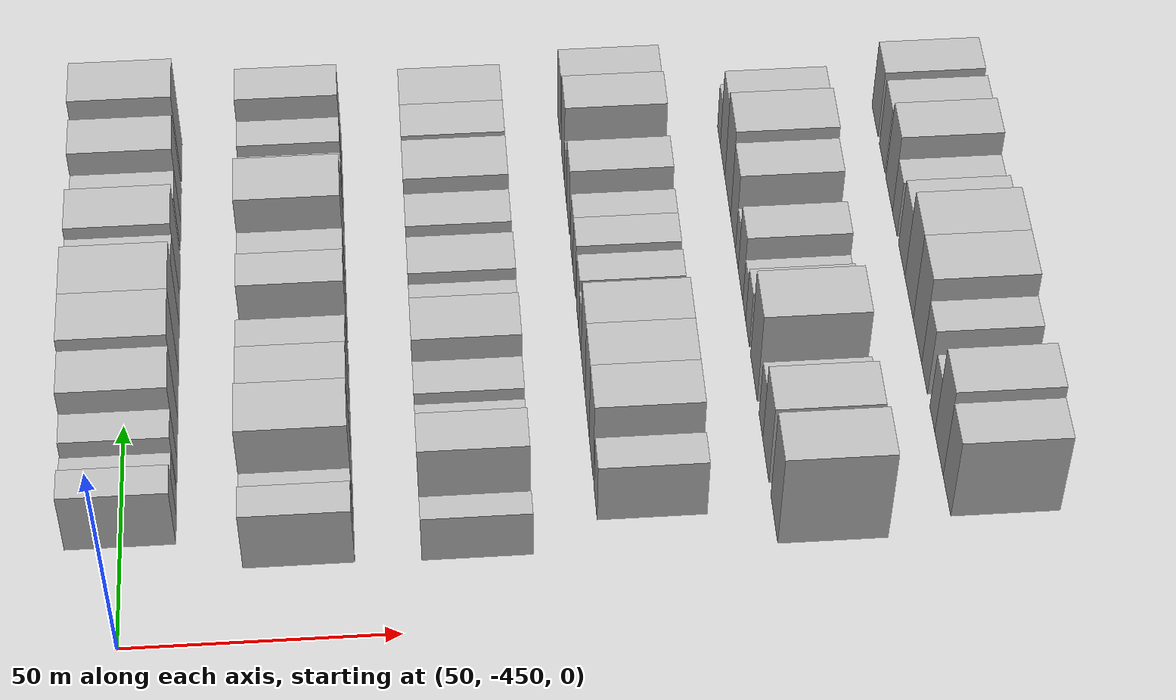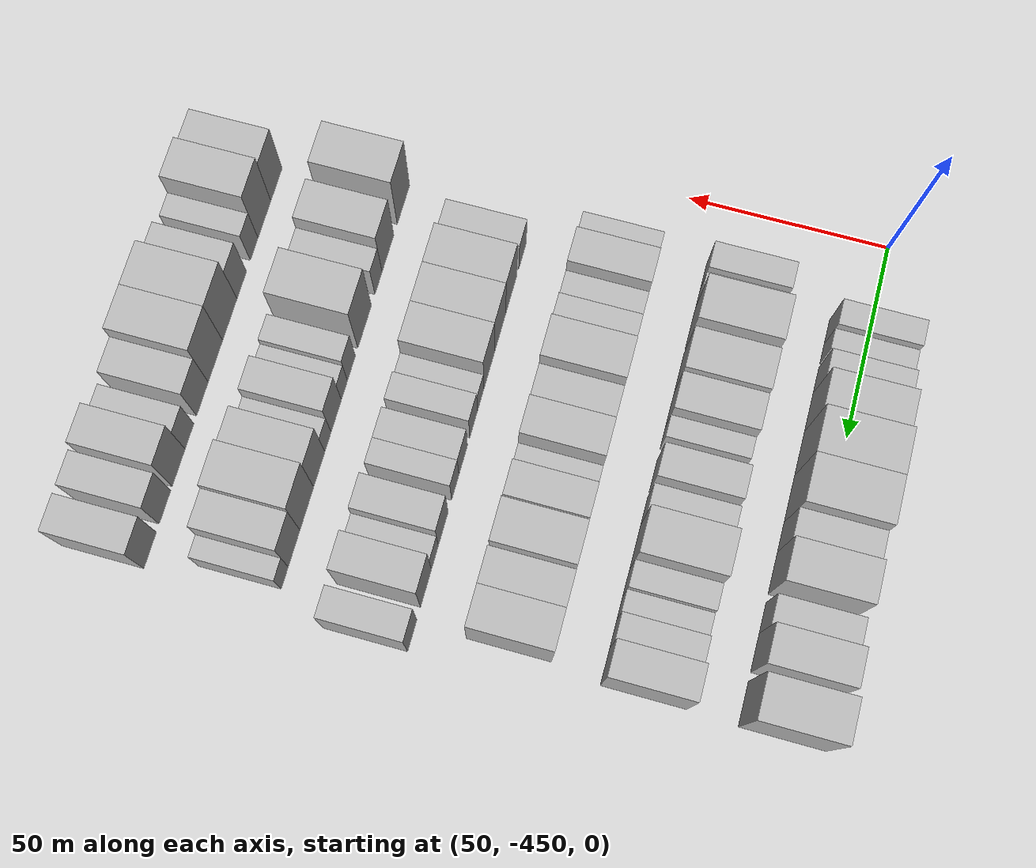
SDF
<sdf version="1.6">
 <world name="default">
  <model name="building_12">
   <static>1</static>
   <pose>50.0000 -424.5682 0 0.000000 0.000000 0.000000</pose>
   <link name="link">
    <pose>0 0 7.50 0 0 0</pose>
    <collision name="collision"><geometry><box><size>20.0000 6.4340 15.0000</size></box></geometry></collision>
    <visual name="visual">
     <cast_shadows>0</cast_shadows>
     <geometry><box><size>20.0000 6.4340 15.0000</size></box></geometry>
     <material>
      <script>
       <uri>model://HANNAS_wall/materials/scripts</uri>
       <uri>model://HANNAS_wall/materials/textures</uri>
       <name>vrc/HANNAS_wall</name>
      </script>
     </material>
    </visual>
   </link>
  </model>
  <model name="building_13">
   <static>1</static>
   <pose>50.0000 -418.7945 0 0.000000 0.000000 0.000000</pose>
   <link name="link">
    <pose>0 0 6.00 0 0 0</pose>
    <collision name="collision"><geometry><box><size>20.0000 5.1134 12.0000</size></box></geometry></collision>
    <visual name="visual">
     <cast_shadows>0</cast_shadows>
     <geometry><box><size>20.0000 5.1134 12.0000</size></box></geometry>
     <material>
      <script>
       <uri>model://HANNAS_wall/materials/scripts</uri>
       <uri>model://HANNAS_wall/materials/textures</uri>
       <name>vrc/HANNAS_wall</name>
      </script>
     </material>
    </visual>
   </link>
  </model>
  <model name="building_14">
   <static>1</static>
   <pose>50.0000 -411.9129 0 0.000000 0.000000 0.000000</pose>
   <link name="link">
    <pose>0 0 7.50 0 0 0</pose>
    <collision name="collision"><geometry><box><size>20.0000 6.6497 15.0000</size></box></geometry></collision>
    <visual name="visual">
     <cast_shadows>0</cast_shadows>
     <geometry><box><size>20.0000 6.6497 15.0000</size></box></geometry>
     <material>
      <script>
       <uri>model://HANNAS_wall/materials/scripts</uri>
       <uri>model://HANNAS_wall/materials/textures</uri>
       <name>vrc/HANNAS_wall</name>
      </script>
     </material>
    </visual>
   </link>
  </model>
  <model name="building_15">
   <static>1</static>
   <pose>50.0000 -403.6830 0 0.000000 0.000000 0.000000</pose>
   <link name="link">
    <pose>0 0 10.50 0 0 0</pose>
    <collision name="collision"><geometry><box><size>20.0000 9.8102 21.0000</size></box></geometry></collision>
    <visual name="visual">
     <cast_shadows>0</cast_shadows>
     <geometry><box><size>20.0000 9.8102 21.0000</size></box></geometry>
     <material>
      <script>
       <uri>model://HANNAS_wall/materials/scripts</uri>
       <uri>model://HANNAS_wall/materials/textures</uri>
       <name>vrc/HANNAS_wall</name>
      </script>
     </material>
    </visual>
   </link>
  </model>
  <model name="building_16">
   <static>1</static>
   <pose>50.0000 -393.2084 0 0.000000 0.000000 0.000000</pose>
   <link name="link">
    <pose>0 0 12.00 0 0 0</pose>
    <collision name="collision"><geometry><box><size>20.0000 11.1389 24.0000</size></box></geometry></collision>
    <visual name="visual">
     <cast_shadows>0</cast_shadows>
     <geometry><box><size>20.0000 11.1389 24.0000</size></box></geometry>
     <material>
      <script>
       <uri>model://HANNAS_wall/materials/scripts</uri>
       <uri>model://HANNAS_wall/materials/textures</uri>
       <name>vrc/HANNAS_wall</name>
      </script>
     </material>
    </visual>
   </link>
  </model>
  <model name="building_17">
   <static>1</static>
   <pose>50.0000 -381.8397 0 0.000000 0.000000 0.000000</pose>
   <link name="link">
    <pose>0 0 12.00 0 0 0</pose>
    <collision name="collision"><geometry><box><size>20.0000 11.5986 24.0000</size></box></geometry></collision>
    <visual name="visual">
     <cast_shadows>0</cast_shadows>
     <geometry><box><size>20.0000 11.5986 24.0000</size></box></geometry>
     <material>
      <script>
       <uri>model://HANNAS_wall/materials/scripts</uri>
       <uri>model://HANNAS_wall/materials/textures</uri>
       <name>vrc/HANNAS_wall</name>
      </script>
     </material>
    </visual>
   </link>
  </model>
  <model name="building_18">
   <static>1</static>
   <pose>50.0000 -372.4252 0 0.000000 0.000000 0.000000</pose>
   <link name="link">
    <pose>0 0 9.00 0 0 0</pose>
    <collision name="collision"><geometry><box><size>20.0000 7.2304 18.0000</size></box></geometry></collision>
    <visual name="visual">
     <cast_shadows>0</cast_shadows>
     <geometry><box><size>20.0000 7.2304 18.0000</size></box></geometry>
     <material>
      <script>
       <uri>model://HANNAS_wall/materials/scripts</uri>
       <uri>model://HANNAS_wall/materials/textures</uri>
       <name>vrc/HANNAS_wall</name>
      </script>
     </material>
    </visual>
   </link>
  </model>
  <model name="building_19">
   <static>1</static>
   <pose>50.0000 -363.7485 0 0.000000 0.000000 0.000000</pose>
   <link name="link">
    <pose>0 0 10.50 0 0 0</pose>
    <collision name="collision"><geometry><box><size>20.0000 10.1231 21.0000</size></box></geometry></collision>
    <visual name="visual">
     <cast_shadows>0</cast_shadows>
     <geometry><box><size>20.0000 10.1231 21.0000</size></box></geometry>
     <material>
      <script>
       <uri>model://HANNAS_wall/materials/scripts</uri>
       <uri>model://HANNAS_wall/materials/textures</uri>
       <name>vrc/HANNAS_wall</name>
      </script>
     </material>
    </visual>
   </link>
  </model>
  <model name="building_20">
   <static>1</static>
   <pose>50.0000 -353.0496 0 0.000000 0.000000 0.000000</pose>
   <link name="link">
    <pose>0 0 7.50 0 0 0</pose>
    <collision name="collision"><geometry><box><size>20.0000 7.2747 15.0000</size></box></geometry></collision>
    <visual name="visual">
     <cast_shadows>0</cast_shadows>
     <geometry><box><size>20.0000 7.2747 15.0000</size></box></geometry>
     <material>
      <script>
       <uri>model://HANNAS_wall/materials/scripts</uri>
       <uri>model://HANNAS_wall/materials/textures</uri>
       <name>vrc/HANNAS_wall</name>
      </script>
     </material>
    </visual>
   </link>
  </model>
  <model name="building_21">
   <static>1</static>
   <pose>50.0000 -344.8619 0 0.000000 0.000000 0.000000</pose>
   <link name="link">
    <pose>0 0 10.50 0 0 0</pose>
    <collision name="collision"><geometry><box><size>20.0000 9.1007 21.0000</size></box></geometry></collision>
    <visual name="visual">
     <cast_shadows>0</cast_shadows>
     <geometry><box><size>20.0000 9.1007 21.0000</size></box></geometry>
     <material>
      <script>
       <uri>model://HANNAS_wall/materials/scripts</uri>
       <uri>model://HANNAS_wall/materials/textures</uri>
       <name>vrc/HANNAS_wall</name>
      </script>
     </material>
    </visual>
   </link>
  </model>
  <model name="building_22">
   <static>1</static>
   <pose>50.0000 -333.0687 0 0.000000 0.000000 0.000000</pose>
   <link name="link">
    <pose>0 0 12.00 0 0 0</pose>
    <collision name="collision"><geometry><box><size>20.0000 10.4857 24.0000</size></box></geometry></collision>
    <visual name="visual">
     <cast_shadows>0</cast_shadows>
     <geometry><box><size>20.0000 10.4857 24.0000</size></box></geometry>
     <material>
      <script>
       <uri>model://HANNAS_wall/materials/scripts</uri>
       <uri>model://HANNAS_wall/materials/textures</uri>
       <name>vrc/HANNAS_wall</name>
      </script>
     </material>
    </visual>
   </link>
  </model>
  <model name="building_124">
   <static>1</static>
   <pose>82.0000 -430.5340 0 0.000000 0.000000 0.000000</pose>
   <link name="link">
    <pose>0 0 7.50 0 0 0</pose>
    <collision name="collision"><geometry><box><size>20.0000 6.7741 15.0000</size></box></geometry></collision>
    <visual name="visual">
     <cast_shadows>0</cast_shadows>
     <geometry><box><size>20.0000 6.7741 15.0000</size></box></geometry>
     <material>
      <script>
       <uri>model://HANNAS_wall/materials/scripts</uri>
       <uri>model://HANNAS_wall/materials/textures</uri>
       <name>vrc/HANNAS_wall</name>
      </script>
     </material>
    </visual>
   </link>
  </model>
  <model name="building_125">
   <static>1</static>
   <pose>82.0000 -424.5236 0 0.000000 0.000000 0.000000</pose>
   <link name="link">
    <pose>0 0 6.00 0 0 0</pose>
    <collision name="collision"><geometry><box><size>20.0000 5.2467 12.0000</size></box></geometry></collision>
    <visual name="visual">
     <cast_shadows>0</cast_shadows>
     <geometry><box><size>20.0000 5.2467 12.0000</size></box></geometry>
     <material>
      <script>
       <uri>model://HANNAS_wall/materials/scripts</uri>
       <uri>model://HANNAS_wall/materials/textures</uri>
       <name>vrc/HANNAS_wall</name>
      </script>
     </material>
    </visual>
   </link>
  </model>
  <model name="building_126">
   <static>1</static>
   <pose>82.0000 -416.4180 0 0.000000 0.000000 0.000000</pose>
   <link name="link">
    <pose>0 0 12.00 0 0 0</pose>
    <collision name="collision"><geometry><box><size>20.0000 10.9645 24.0000</size></box></geometry></collision>
    <visual name="visual">
     <cast_shadows>0</cast_shadows>
     <geometry><box><size>20.0000 10.9645 24.0000</size></box></geometry>
     <material>
      <script>
       <uri>model://HANNAS_wall/materials/scripts</uri>
       <uri>model://HANNAS_wall/materials/textures</uri>
       <name>vrc/HANNAS_wall</name>
      </script>
     </material>
    </visual>
   </link>
  </model>
  <model name="building_127">
   <static>1</static>
   <pose>82.0000 -404.8892 0 0.000000 0.000000 0.000000</pose>
   <link name="link">
    <pose>0 0 10.50 0 0 0</pose>
    <collision name="collision"><geometry><box><size>20.0000 10.0932 21.0000</size></box></geometry></collision>
    <visual name="visual">
     <cast_shadows>0</cast_shadows>
     <geometry><box><size>20.0000 10.0932 21.0000</size></box></geometry>
     <material>
      <script>
       <uri>model://HANNAS_wall/materials/scripts</uri>
       <uri>model://HANNAS_wall/materials/textures</uri>
       <name>vrc/HANNAS_wall</name>
      </script>
     </material>
    </visual>
   </link>
  </model>
  <model name="building_128">
   <static>1</static>
   <pose>82.0000 -395.3559 0 0.000000 0.000000 0.000000</pose>
   <link name="link">
    <pose>0 0 9.00 0 0 0</pose>
    <collision name="collision"><geometry><box><size>20.0000 8.9732 18.0000</size></box></geometry></collision>
    <visual name="visual">
     <cast_shadows>0</cast_shadows>
     <geometry><box><size>20.0000 8.9732 18.0000</size></box></geometry>
     <material>
      <script>
       <uri>model://HANNAS_wall/materials/scripts</uri>
       <uri>model://HANNAS_wall/materials/textures</uri>
       <name>vrc/HANNAS_wall</name>
      </script>
     </material>
    </visual>
   </link>
  </model>
  <model name="building_129">
   <static>1</static>
   <pose>82.0000 -388.2121 0 0.000000 0.000000 0.000000</pose>
   <link name="link">
    <pose>0 0 6.00 0 0 0</pose>
    <collision name="collision"><geometry><box><size>20.0000 5.3145 12.0000</size></box></geometry></collision>
    <visual name="visual">
     <cast_shadows>0</cast_shadows>
     <geometry><box><size>20.0000 5.3145 12.0000</size></box></geometry>
     <material>
      <script>
       <uri>model://HANNAS_wall/materials/scripts</uri>
       <uri>model://HANNAS_wall/materials/textures</uri>
       <name>vrc/HANNAS_wall</name>
      </script>
     </material>
    </visual>
   </link>
  </model>
  <model name="building_130">
   <static>1</static>
   <pose>82.0000 -378.5618 0 0.000000 0.000000 0.000000</pose>
   <link name="link">
    <pose>0 0 9.00 0 0 0</pose>
    <collision name="collision"><geometry><box><size>20.0000 7.9861 18.0000</size></box></geometry></collision>
    <visual name="visual">
     <cast_shadows>0</cast_shadows>
     <geometry><box><size>20.0000 7.9861 18.0000</size></box></geometry>
     <material>
      <script>
       <uri>model://HANNAS_wall/materials/scripts</uri>
       <uri>model://HANNAS_wall/materials/textures</uri>
       <name>vrc/HANNAS_wall</name>
      </script>
     </material>
    </visual>
   </link>
  </model>
  <model name="building_131">
   <static>1</static>
   <pose>82.0000 -370.0296 0 0.000000 0.000000 0.000000</pose>
   <link name="link">
    <pose>0 0 7.50 0 0 0</pose>
    <collision name="collision"><geometry><box><size>20.0000 7.0783 15.0000</size></box></geometry></collision>
    <visual name="visual">
     <cast_shadows>0</cast_shadows>
     <geometry><box><size>20.0000 7.0783 15.0000</size></box></geometry>
     <material>
      <script>
       <uri>model://HANNAS_wall/materials/scripts</uri>
       <uri>model://HANNAS_wall/materials/textures</uri>
       <name>vrc/HANNAS_wall</name>
      </script>
     </material>
    </visual>
   </link>
  </model>
  <model name="building_132">
   <static>1</static>
   <pose>82.0000 -361.0724 0 0.000000 0.000000 0.000000</pose>
   <link name="link">
    <pose>0 0 12.00 0 0 0</pose>
    <collision name="collision"><geometry><box><size>20.0000 10.8361 24.0000</size></box></geometry></collision>
    <visual name="visual">
     <cast_shadows>0</cast_shadows>
     <geometry><box><size>20.0000 10.8361 24.0000</size></box></geometry>
     <material>
      <script>
       <uri>model://HANNAS_wall/materials/scripts</uri>
       <uri>model://HANNAS_wall/materials/textures</uri>
       <name>vrc/HANNAS_wall</name>
      </script>
     </material>
    </visual>
   </link>
  </model>
  <model name="building_133">
   <static>1</static>
   <pose>82.0000 -352.4834 0 0.000000 0.000000 0.000000</pose>
   <link name="link">
    <pose>0 0 7.50 0 0 0</pose>
    <collision name="collision"><geometry><box><size>20.0000 6.3420 15.0000</size></box></geometry></collision>
    <visual name="visual">
     <cast_shadows>0</cast_shadows>
     <geometry><box><size>20.0000 6.3420 15.0000</size></box></geometry>
     <material>
      <script>
       <uri>model://HANNAS_wall/materials/scripts</uri>
       <uri>model://HANNAS_wall/materials/textures</uri>
       <name>vrc/HANNAS_wall</name>
      </script>
     </material>
    </visual>
   </link>
  </model>
  <model name="building_134">
   <static>1</static>
   <pose>82.0000 -346.5260 0 0.000000 0.000000 0.000000</pose>
   <link name="link">
    <pose>0 0 6.00 0 0 0</pose>
    <collision name="collision"><geometry><box><size>20.0000 5.5727 12.0000</size></box></geometry></collision>
    <visual name="visual">
     <cast_shadows>0</cast_shadows>
     <geometry><box><size>20.0000 5.5727 12.0000</size></box></geometry>
     <material>
      <script>
       <uri>model://HANNAS_wall/materials/scripts</uri>
       <uri>model://HANNAS_wall/materials/textures</uri>
       <name>vrc/HANNAS_wall</name>
      </script>
     </material>
    </visual>
   </link>
  </model>
  <model name="building_135">
   <static>1</static>
   <pose>82.0000 -340.3634 0 0.000000 0.000000 0.000000</pose>
   <link name="link">
    <pose>0 0 7.50 0 0 0</pose>
    <collision name="collision"><geometry><box><size>20.0000 6.7524 15.0000</size></box></geometry></collision>
    <visual name="visual">
     <cast_shadows>0</cast_shadows>
     <geometry><box><size>20.0000 6.7524 15.0000</size></box></geometry>
     <material>
      <script>
       <uri>model://HANNAS_wall/materials/scripts</uri>
       <uri>model://HANNAS_wall/materials/textures</uri>
       <name>vrc/HANNAS_wall</name>
      </script>
     </material>
    </visual>
   </link>
  </model>
  <model name="building_136">
   <static>1</static>
   <pose>82.0000 -332.7306 0 0.000000 0.000000 0.000000</pose>
   <link name="link">
    <pose>0 0 10.50 0 0 0</pose>
    <collision name="collision"><geometry><box><size>20.0000 8.5133 21.0000</size></box></geometry></collision>
    <visual name="visual">
     <cast_shadows>0</cast_shadows>
     <geometry><box><size>20.0000 8.5133 21.0000</size></box></geometry>
     <material>
      <script>
       <uri>model://HANNAS_wall/materials/scripts</uri>
       <uri>model://HANNAS_wall/materials/textures</uri>
       <name>vrc/HANNAS_wall</name>
      </script>
     </material>
    </visual>
   </link>
  </model>
  <model name="building_250">
   <static>1</static>
   <pose>114.0000 -431.7602 0 0.000000 0.000000 0.000000</pose>
   <link name="link">
    <pose>0 0 6.00 0 0 0</pose>
    <collision name="collision"><geometry><box><size>20.0000 5.1000 12.0000</size></box></geometry></collision>
    <visual name="visual">
     <cast_shadows>0</cast_shadows>
     <geometry><box><size>20.0000 5.1000 12.0000</size></box></geometry>
     <material>
      <script>
       <uri>model://HANNAS_wall/materials/scripts</uri>
       <uri>model://HANNAS_wall/materials/textures</uri>
       <name>vrc/HANNAS_wall</name>
      </script>
     </material>
    </visual>
   </link>
  </model>
  <model name="building_251">
   <static>1</static>
   <pose>114.0000 -421.8343 0 0.000000 0.000000 0.000000</pose>
   <link name="link">
    <pose>0 0 10.50 0 0 0</pose>
    <collision name="collision"><geometry><box><size>20.0000 8.7518 21.0000</size></box></geometry></collision>
    <visual name="visual">
     <cast_shadows>0</cast_shadows>
     <geometry><box><size>20.0000 8.7518 21.0000</size></box></geometry>
     <material>
      <script>
       <uri>model://HANNAS_wall/materials/scripts</uri>
       <uri>model://HANNAS_wall/materials/textures</uri>
       <name>vrc/HANNAS_wall</name>
      </script>
     </material>
    </visual>
   </link>
  </model>
  <model name="building_252">
   <static>1</static>
   <pose>114.0000 -414.0131 0 0.000000 0.000000 0.000000</pose>
   <link name="link">
    <pose>0 0 7.50 0 0 0</pose>
    <collision name="collision"><geometry><box><size>20.0000 6.8906 15.0000</size></box></geometry></collision>
    <visual name="visual">
     <cast_shadows>0</cast_shadows>
     <geometry><box><size>20.0000 6.8906 15.0000</size></box></geometry>
     <material>
      <script>
       <uri>model://HANNAS_wall/materials/scripts</uri>
       <uri>model://HANNAS_wall/materials/textures</uri>
       <name>vrc/HANNAS_wall</name>
      </script>
     </material>
    </visual>
   </link>
  </model>
  <model name="building_253">
   <static>1</static>
   <pose>114.0000 -406.7604 0 0.000000 0.000000 0.000000</pose>
   <link name="link">
    <pose>0 0 9.00 0 0 0</pose>
    <collision name="collision"><geometry><box><size>20.0000 7.6148 18.0000</size></box></geometry></collision>
    <visual name="visual">
     <cast_shadows>0</cast_shadows>
     <geometry><box><size>20.0000 7.6148 18.0000</size></box></geometry>
     <material>
      <script>
       <uri>model://HANNAS_wall/materials/scripts</uri>
       <uri>model://HANNAS_wall/materials/textures</uri>
       <name>vrc/HANNAS_wall</name>
      </script>
     </material>
    </visual>
   </link>
  </model>
  <model name="building_254">
   <static>1</static>
   <pose>114.0000 -397.9129 0 0.000000 0.000000 0.000000</pose>
   <link name="link">
    <pose>0 0 12.00 0 0 0</pose>
    <collision name="collision"><geometry><box><size>20.0000 10.0802 24.0000</size></box></geometry></collision>
    <visual name="visual">
     <cast_shadows>0</cast_shadows>
     <geometry><box><size>20.0000 10.0802 24.0000</size></box></geometry>
     <material>
      <script>
       <uri>model://HANNAS_wall/materials/scripts</uri>
       <uri>model://HANNAS_wall/materials/textures</uri>
       <name>vrc/HANNAS_wall</name>
      </script>
     </material>
    </visual>
   </link>
  </model>
  <model name="building_255">
   <static>1</static>
   <pose>114.0000 -388.5954 0 0.000000 0.000000 0.000000</pose>
   <link name="link">
    <pose>0 0 9.00 0 0 0</pose>
    <collision name="collision"><geometry><box><size>20.0000 8.5548 18.0000</size></box></geometry></collision>
    <visual name="visual">
     <cast_shadows>0</cast_shadows>
     <geometry><box><size>20.0000 8.5548 18.0000</size></box></geometry>
     <material>
      <script>
       <uri>model://HANNAS_wall/materials/scripts</uri>
       <uri>model://HANNAS_wall/materials/textures</uri>
       <name>vrc/HANNAS_wall</name>
      </script>
     </material>
    </visual>
   </link>
  </model>
  <model name="building_256">
   <static>1</static>
   <pose>114.0000 -379.7236 0 0.000000 0.000000 0.000000</pose>
   <link name="link">
    <pose>0 0 10.50 0 0 0</pose>
    <collision name="collision"><geometry><box><size>20.0000 9.1888 21.0000</size></box></geometry></collision>
    <visual name="visual">
     <cast_shadows>0</cast_shadows>
     <geometry><box><size>20.0000 9.1888 21.0000</size></box></geometry>
     <material>
      <script>
       <uri>model://HANNAS_wall/materials/scripts</uri>
       <uri>model://HANNAS_wall/materials/textures</uri>
       <name>vrc/HANNAS_wall</name>
      </script>
     </material>
    </visual>
   </link>
  </model>
  <model name="building_257">
   <static>1</static>
   <pose>114.0000 -372.4502 0 0.000000 0.000000 0.000000</pose>
   <link name="link">
    <pose>0 0 6.00 0 0 0</pose>
    <collision name="collision"><geometry><box><size>20.0000 5.3579 12.0000</size></box></geometry></collision>
    <visual name="visual">
     <cast_shadows>0</cast_shadows>
     <geometry><box><size>20.0000 5.3579 12.0000</size></box></geometry>
     <material>
      <script>
       <uri>model://HANNAS_wall/materials/scripts</uri>
       <uri>model://HANNAS_wall/materials/textures</uri>
       <name>vrc/HANNAS_wall</name>
      </script>
     </material>
    </visual>
   </link>
  </model>
  <model name="building_258">
   <static>1</static>
   <pose>114.0000 -365.5636 0 0.000000 0.000000 0.000000</pose>
   <link name="link">
    <pose>0 0 9.00 0 0 0</pose>
    <collision name="collision"><geometry><box><size>20.0000 8.4153 18.0000</size></box></geometry></collision>
    <visual name="visual">
     <cast_shadows>0</cast_shadows>
     <geometry><box><size>20.0000 8.4153 18.0000</size></box></geometry>
     <material>
      <script>
       <uri>model://HANNAS_wall/materials/scripts</uri>
       <uri>model://HANNAS_wall/materials/textures</uri>
       <name>vrc/HANNAS_wall</name>
      </script>
     </material>
    </visual>
   </link>
  </model>
  <model name="building_259">
   <static>1</static>
   <pose>114.0000 -355.1842 0 0.000000 0.000000 0.000000</pose>
   <link name="link">
    <pose>0 0 10.50 0 0 0</pose>
    <collision name="collision"><geometry><box><size>20.0000 10.3436 21.0000</size></box></geometry></collision>
    <visual name="visual">
     <cast_shadows>0</cast_shadows>
     <geometry><box><size>20.0000 10.3436 21.0000</size></box></geometry>
     <material>
      <script>
       <uri>model://HANNAS_wall/materials/scripts</uri>
       <uri>model://HANNAS_wall/materials/textures</uri>
       <name>vrc/HANNAS_wall</name>
      </script>
     </material>
    </visual>
   </link>
  </model>
  <model name="building_260">
   <static>1</static>
   <pose>114.0000 -344.7237 0 0.000000 0.000000 0.000000</pose>
   <link name="link">
    <pose>0 0 10.50 0 0 0</pose>
    <collision name="collision"><geometry><box><size>20.0000 8.5774 21.0000</size></box></geometry></collision>
    <visual name="visual">
     <cast_shadows>0</cast_shadows>
     <geometry><box><size>20.0000 8.5774 21.0000</size></box></geometry>
     <material>
      <script>
       <uri>model://HANNAS_wall/materials/scripts</uri>
       <uri>model://HANNAS_wall/materials/textures</uri>
       <name>vrc/HANNAS_wall</name>
      </script>
     </material>
    </visual>
   </link>
  </model>
  <model name="building_261">
   <static>1</static>
   <pose>114.0000 -335.5217 0 0.000000 0.000000 0.000000</pose>
   <link name="link">
    <pose>0 0 10.50 0 0 0</pose>
    <collision name="collision"><geometry><box><size>20.0000 9.8266 21.0000</size></box></geometry></collision>
    <visual name="visual">
     <cast_shadows>0</cast_shadows>
     <geometry><box><size>20.0000 9.8266 21.0000</size></box></geometry>
     <material>
      <script>
       <uri>model://HANNAS_wall/materials/scripts</uri>
       <uri>model://HANNAS_wall/materials/textures</uri>
       <name>vrc/HANNAS_wall</name>
      </script>
     </material>
    </visual>
   </link>
  </model>
  <model name="building_370">
   <static>1</static>
   <pose>146.0000 -423.8930 0 0.000000 0.000000 0.000000</pose>
   <link name="link">
    <pose>0 0 7.50 0 0 0</pose>
    <collision name="collision"><geometry><box><size>20.0000 7.0116 15.0000</size></box></geometry></collision>
    <visual name="visual">
     <cast_shadows>0</cast_shadows>
     <geometry><box><size>20.0000 7.0116 15.0000</size></box></geometry>
     <material>
      <script>
       <uri>model://HANNAS_wall/materials/scripts</uri>
       <uri>model://HANNAS_wall/materials/textures</uri>
       <name>vrc/HANNAS_wall</name>
      </script>
     </material>
    </visual>
   </link>
  </model>
  <model name="building_371">
   <static>1</static>
   <pose>146.0000 -413.4018 0 0.000000 0.000000 0.000000</pose>
   <link name="link">
    <pose>0 0 10.50 0 0 0</pose>
    <collision name="collision"><geometry><box><size>20.0000 9.9707 21.0000</size></box></geometry></collision>
    <visual name="visual">
     <cast_shadows>0</cast_shadows>
     <geometry><box><size>20.0000 9.9707 21.0000</size></box></geometry>
     <material>
      <script>
       <uri>model://HANNAS_wall/materials/scripts</uri>
       <uri>model://HANNAS_wall/materials/textures</uri>
       <name>vrc/HANNAS_wall</name>
      </script>
     </material>
    </visual>
   </link>
  </model>
  <model name="building_372">
   <static>1</static>
   <pose>146.0000 -403.4759 0 0.000000 0.000000 0.000000</pose>
   <link name="link">
    <pose>0 0 10.50 0 0 0</pose>
    <collision name="collision"><geometry><box><size>20.0000 9.8812 21.0000</size></box></geometry></collision>
    <visual name="visual">
     <cast_shadows>0</cast_shadows>
     <geometry><box><size>20.0000 9.8812 21.0000</size></box></geometry>
     <material>
      <script>
       <uri>model://HANNAS_wall/materials/scripts</uri>
       <uri>model://HANNAS_wall/materials/textures</uri>
       <name>vrc/HANNAS_wall</name>
      </script>
     </material>
    </visual>
   </link>
  </model>
  <model name="building_373">
   <static>1</static>
   <pose>146.0000 -393.5887 0 0.000000 0.000000 0.000000</pose>
   <link name="link">
    <pose>0 0 10.50 0 0 0</pose>
    <collision name="collision"><geometry><box><size>20.0000 9.8931 21.0000</size></box></geometry></collision>
    <visual name="visual">
     <cast_shadows>0</cast_shadows>
     <geometry><box><size>20.0000 9.8931 21.0000</size></box></geometry>
     <material>
      <script>
       <uri>model://HANNAS_wall/materials/scripts</uri>
       <uri>model://HANNAS_wall/materials/textures</uri>
       <name>vrc/HANNAS_wall</name>
      </script>
     </material>
    </visual>
   </link>
  </model>
  <model name="building_374">
   <static>1</static>
   <pose>146.0000 -385.8053 0 0.000000 0.000000 0.000000</pose>
   <link name="link">
    <pose>0 0 6.00 0 0 0</pose>
    <collision name="collision"><geometry><box><size>20.0000 5.6739 12.0000</size></box></geometry></collision>
    <visual name="visual">
     <cast_shadows>0</cast_shadows>
     <geometry><box><size>20.0000 5.6739 12.0000</size></box></geometry>
     <material>
      <script>
       <uri>model://HANNAS_wall/materials/scripts</uri>
       <uri>model://HANNAS_wall/materials/textures</uri>
       <name>vrc/HANNAS_wall</name>
      </script>
     </material>
    </visual>
   </link>
  </model>
  <model name="building_375">
   <static>1</static>
   <pose>146.0000 -379.6084 0 0.000000 0.000000 0.000000</pose>
   <link name="link">
    <pose>0 0 7.50 0 0 0</pose>
    <collision name="collision"><geometry><box><size>20.0000 6.7198 15.0000</size></box></geometry></collision>
    <visual name="visual">
     <cast_shadows>0</cast_shadows>
     <geometry><box><size>20.0000 6.7198 15.0000</size></box></geometry>
     <material>
      <script>
       <uri>model://HANNAS_wall/materials/scripts</uri>
       <uri>model://HANNAS_wall/materials/textures</uri>
       <name>vrc/HANNAS_wall</name>
      </script>
     </material>
    </visual>
   </link>
  </model>
  <model name="building_376">
   <static>1</static>
   <pose>146.0000 -370.5428 0 0.000000 0.000000 0.000000</pose>
   <link name="link">
    <pose>0 0 7.50 0 0 0</pose>
    <collision name="collision"><geometry><box><size>20.0000 7.4116 15.0000</size></box></geometry></collision>
    <visual name="visual">
     <cast_shadows>0</cast_shadows>
     <geometry><box><size>20.0000 7.4116 15.0000</size></box></geometry>
     <material>
      <script>
       <uri>model://HANNAS_wall/materials/scripts</uri>
       <uri>model://HANNAS_wall/materials/textures</uri>
       <name>vrc/HANNAS_wall</name>
      </script>
     </material>
    </visual>
   </link>
  </model>
  <model name="building_377">
   <static>1</static>
   <pose>146.0000 -363.7409 0 0.000000 0.000000 0.000000</pose>
   <link name="link">
    <pose>0 0 7.50 0 0 0</pose>
    <collision name="collision"><geometry><box><size>20.0000 6.1920 15.0000</size></box></geometry></collision>
    <visual name="visual">
     <cast_shadows>0</cast_shadows>
     <geometry><box><size>20.0000 6.1920 15.0000</size></box></geometry>
     <material>
      <script>
       <uri>model://HANNAS_wall/materials/scripts</uri>
       <uri>model://HANNAS_wall/materials/textures</uri>
       <name>vrc/HANNAS_wall</name>
      </script>
     </material>
    </visual>
   </link>
  </model>
  <model name="building_378">
   <static>1</static>
   <pose>146.0000 -353.5188 0 0.000000 0.000000 0.000000</pose>
   <link name="link">
    <pose>0 0 9.00 0 0 0</pose>
    <collision name="collision"><geometry><box><size>20.0000 8.2523 18.0000</size></box></geometry></collision>
    <visual name="visual">
     <cast_shadows>0</cast_shadows>
     <geometry><box><size>20.0000 8.2523 18.0000</size></box></geometry>
     <material>
      <script>
       <uri>model://HANNAS_wall/materials/scripts</uri>
       <uri>model://HANNAS_wall/materials/textures</uri>
       <name>vrc/HANNAS_wall</name>
      </script>
     </material>
    </visual>
   </link>
  </model>
  <model name="building_379">
   <static>1</static>
   <pose>146.0000 -346.4874 0 0.000000 0.000000 0.000000</pose>
   <link name="link">
    <pose>0 0 6.00 0 0 0</pose>
    <collision name="collision"><geometry><box><size>20.0000 5.8104 12.0000</size></box></geometry></collision>
    <visual name="visual">
     <cast_shadows>0</cast_shadows>
     <geometry><box><size>20.0000 5.8104 12.0000</size></box></geometry>
     <material>
      <script>
       <uri>model://HANNAS_wall/materials/scripts</uri>
       <uri>model://HANNAS_wall/materials/textures</uri>
       <name>vrc/HANNAS_wall</name>
      </script>
     </material>
    </visual>
   </link>
  </model>
  <model name="building_380">
   <static>1</static>
   <pose>146.0000 -339.1224 0 0.000000 0.000000 0.000000</pose>
   <link name="link">
    <pose>0 0 10.50 0 0 0</pose>
    <collision name="collision"><geometry><box><size>20.0000 8.9196 21.0000</size></box></geometry></collision>
    <visual name="visual">
     <cast_shadows>0</cast_shadows>
     <geometry><box><size>20.0000 8.9196 21.0000</size></box></geometry>
     <material>
      <script>
       <uri>model://HANNAS_wall/materials/scripts</uri>
       <uri>model://HANNAS_wall/materials/textures</uri>
       <name>vrc/HANNAS_wall</name>
      </script>
     </material>
    </visual>
   </link>
  </model>
  <model name="building_381">
   <static>1</static>
   <pose>146.0000 -327.9325 0 0.000000 0.000000 0.000000</pose>
   <link name="link">
    <pose>0 0 9.00 0 0 0</pose>
    <collision name="collision"><geometry><box><size>20.0000 7.4601 18.0000</size></box></geometry></collision>
    <visual name="visual">
     <cast_shadows>0</cast_shadows>
     <geometry><box><size>20.0000 7.4601 18.0000</size></box></geometry>
     <material>
      <script>
       <uri>model://HANNAS_wall/materials/scripts</uri>
       <uri>model://HANNAS_wall/materials/textures</uri>
       <name>vrc/HANNAS_wall</name>
      </script>
     </material>
    </visual>
   </link>
  </model>
  <model name="building_491">
   <static>1</static>
   <pose>178.0000 -429.3999 0 0.000000 0.000000 0.000000</pose>
   <link name="link">
    <pose>0 0 12.00 0 0 0</pose>
    <collision name="collision"><geometry><box><size>20.0000 10.8238 24.0000</size></box></geometry></collision>
    <visual name="visual">
     <cast_shadows>0</cast_shadows>
     <geometry><box><size>20.0000 10.8238 24.0000</size></box></geometry>
     <material>
      <script>
       <uri>model://HANNAS_wall/materials/scripts</uri>
       <uri>model://HANNAS_wall/materials/textures</uri>
       <name>vrc/HANNAS_wall</name>
      </script>
     </material>
    </visual>
   </link>
  </model>
  <model name="building_492">
   <static>1</static>
   <pose>178.0000 -415.9566 0 0.000000 0.000000 0.000000</pose>
   <link name="link">
    <pose>0 0 10.50 0 0 0</pose>
    <collision name="collision"><geometry><box><size>20.0000 10.0627 21.0000</size></box></geometry></collision>
    <visual name="visual">
     <cast_shadows>0</cast_shadows>
     <geometry><box><size>20.0000 10.0627 21.0000</size></box></geometry>
     <material>
      <script>
       <uri>model://HANNAS_wall/materials/scripts</uri>
       <uri>model://HANNAS_wall/materials/textures</uri>
       <name>vrc/HANNAS_wall</name>
      </script>
     </material>
    </visual>
   </link>
  </model>
  <model name="building_493">
   <static>1</static>
   <pose>178.0000 -407.9051 0 0.000000 0.000000 0.000000</pose>
   <link name="link">
    <pose>0 0 7.50 0 0 0</pose>
    <collision name="collision"><geometry><box><size>20.0000 6.0403 15.0000</size></box></geometry></collision>
    <visual name="visual">
     <cast_shadows>0</cast_shadows>
     <geometry><box><size>20.0000 6.0403 15.0000</size></box></geometry>
     <material>
      <script>
       <uri>model://HANNAS_wall/materials/scripts</uri>
       <uri>model://HANNAS_wall/materials/textures</uri>
       <name>vrc/HANNAS_wall</name>
      </script>
     </material>
    </visual>
   </link>
  </model>
  <model name="building_494">
   <static>1</static>
   <pose>178.0000 -396.2238 0 0.000000 0.000000 0.000000</pose>
   <link name="link">
    <pose>0 0 12.00 0 0 0</pose>
    <collision name="collision"><geometry><box><size>20.0000 11.3224 24.0000</size></box></geometry></collision>
    <visual name="visual">
     <cast_shadows>0</cast_shadows>
     <geometry><box><size>20.0000 11.3224 24.0000</size></box></geometry>
     <material>
      <script>
       <uri>model://HANNAS_wall/materials/scripts</uri>
       <uri>model://HANNAS_wall/materials/textures</uri>
       <name>vrc/HANNAS_wall</name>
      </script>
     </material>
    </visual>
   </link>
  </model>
  <model name="building_495">
   <static>1</static>
   <pose>178.0000 -385.3204 0 0.000000 0.000000 0.000000</pose>
   <link name="link">
    <pose>0 0 7.50 0 0 0</pose>
    <collision name="collision"><geometry><box><size>20.0000 6.4842 15.0000</size></box></geometry></collision>
    <visual name="visual">
     <cast_shadows>0</cast_shadows>
     <geometry><box><size>20.0000 6.4842 15.0000</size></box></geometry>
     <material>
      <script>
       <uri>model://HANNAS_wall/materials/scripts</uri>
       <uri>model://HANNAS_wall/materials/textures</uri>
       <name>vrc/HANNAS_wall</name>
      </script>
     </material>
    </visual>
   </link>
  </model>
  <model name="building_496">
   <static>1</static>
   <pose>178.0000 -379.5928 0 0.000000 0.000000 0.000000</pose>
   <link name="link">
    <pose>0 0 6.00 0 0 0</pose>
    <collision name="collision"><geometry><box><size>20.0000 4.9710 12.0000</size></box></geometry></collision>
    <visual name="visual">
     <cast_shadows>0</cast_shadows>
     <geometry><box><size>20.0000 4.9710 12.0000</size></box></geometry>
     <material>
      <script>
       <uri>model://HANNAS_wall/materials/scripts</uri>
       <uri>model://HANNAS_wall/materials/textures</uri>
       <name>vrc/HANNAS_wall</name>
      </script>
     </material>
    </visual>
   </link>
  </model>
  <model name="building_497">
   <static>1</static>
   <pose>178.0000 -372.9992 0 0.000000 0.000000 0.000000</pose>
   <link name="link">
    <pose>0 0 9.00 0 0 0</pose>
    <collision name="collision"><geometry><box><size>20.0000 8.2161 18.0000</size></box></geometry></collision>
    <visual name="visual">
     <cast_shadows>0</cast_shadows>
     <geometry><box><size>20.0000 8.2161 18.0000</size></box></geometry>
     <material>
      <script>
       <uri>model://HANNAS_wall/materials/scripts</uri>
       <uri>model://HANNAS_wall/materials/textures</uri>
       <name>vrc/HANNAS_wall</name>
      </script>
     </material>
    </visual>
   </link>
  </model>
  <model name="building_498">
   <static>1</static>
   <pose>178.0000 -366.3861 0 0.000000 0.000000 0.000000</pose>
   <link name="link">
    <pose>0 0 6.00 0 0 0</pose>
    <collision name="collision"><geometry><box><size>20.0000 5.0102 12.0000</size></box></geometry></collision>
    <visual name="visual">
     <cast_shadows>0</cast_shadows>
     <geometry><box><size>20.0000 5.0102 12.0000</size></box></geometry>
     <material>
      <script>
       <uri>model://HANNAS_wall/materials/scripts</uri>
       <uri>model://HANNAS_wall/materials/textures</uri>
       <name>vrc/HANNAS_wall</name>
      </script>
     </material>
    </visual>
   </link>
  </model>
  <model name="building_499">
   <static>1</static>
   <pose>178.0000 -359.4664 0 0.000000 0.000000 0.000000</pose>
   <link name="link">
    <pose>0 0 10.50 0 0 0</pose>
    <collision name="collision"><geometry><box><size>20.0000 8.8291 21.0000</size></box></geometry></collision>
    <visual name="visual">
     <cast_shadows>0</cast_shadows>
     <geometry><box><size>20.0000 8.8291 21.0000</size></box></geometry>
     <material>
      <script>
       <uri>model://HANNAS_wall/materials/scripts</uri>
       <uri>model://HANNAS_wall/materials/textures</uri>
       <name>vrc/HANNAS_wall</name>
      </script>
     </material>
    </visual>
   </link>
  </model>
  <model name="building_500">
   <static>1</static>
   <pose>178.0000 -349.7337 0 0.000000 0.000000 0.000000</pose>
   <link name="link">
    <pose>0 0 12.00 0 0 0</pose>
    <collision name="collision"><geometry><box><size>20.0000 10.6365 24.0000</size></box></geometry></collision>
    <visual name="visual">
     <cast_shadows>0</cast_shadows>
     <geometry><box><size>20.0000 10.6365 24.0000</size></box></geometry>
     <material>
      <script>
       <uri>model://HANNAS_wall/materials/scripts</uri>
       <uri>model://HANNAS_wall/materials/textures</uri>
       <name>vrc/HANNAS_wall</name>
      </script>
     </material>
    </visual>
   </link>
  </model>
  <model name="building_501">
   <static>1</static>
   <pose>178.0000 -339.9430 0 0.000000 0.000000 0.000000</pose>
   <link name="link">
    <pose>0 0 10.50 0 0 0</pose>
    <collision name="collision"><geometry><box><size>20.0000 8.9449 21.0000</size></box></geometry></collision>
    <visual name="visual">
     <cast_shadows>0</cast_shadows>
     <geometry><box><size>20.0000 8.9449 21.0000</size></box></geometry>
     <material>
      <script>
       <uri>model://HANNAS_wall/materials/scripts</uri>
       <uri>model://HANNAS_wall/materials/textures</uri>
       <name>vrc/HANNAS_wall</name>
      </script>
     </material>
    </visual>
   </link>
  </model>
  <model name="building_502">
   <static>1</static>
   <pose>178.0000 -332.8159 0 0.000000 0.000000 0.000000</pose>
   <link name="link">
    <pose>0 0 6.00 0 0 0</pose>
    <collision name="collision"><geometry><box><size>20.0000 5.3094 12.0000</size></box></geometry></collision>
    <visual name="visual">
     <cast_shadows>0</cast_shadows>
     <geometry><box><size>20.0000 5.3094 12.0000</size></box></geometry>
     <material>
      <script>
       <uri>model://HANNAS_wall/materials/scripts</uri>
       <uri>model://HANNAS_wall/materials/textures</uri>
       <name>vrc/HANNAS_wall</name>
      </script>
     </material>
    </visual>
   </link>
  </model>
  <model name="building_612">
   <static>1</static>
   <pose>210.0000 -426.2255 0 0.000000 0.000000 0.000000</pose>
   <link name="link">
    <pose>0 0 10.50 0 0 0</pose>
    <collision name="collision"><geometry><box><size>20.0000 9.2067 21.0000</size></box></geometry></collision>
    <visual name="visual">
     <cast_shadows>0</cast_shadows>
     <geometry><box><size>20.0000 9.2067 21.0000</size></box></geometry>
     <material>
      <script>
       <uri>model://HANNAS_wall/materials/scripts</uri>
       <uri>model://HANNAS_wall/materials/textures</uri>
       <name>vrc/HANNAS_wall</name>
      </script>
     </material>
    </visual>
   </link>
  </model>
  <model name="building_613">
   <static>1</static>
   <pose>210.0000 -416.4963 0 0.000000 0.000000 0.000000</pose>
   <link name="link">
    <pose>0 0 12.00 0 0 0</pose>
    <collision name="collision"><geometry><box><size>20.0000 10.2517 24.0000</size></box></geometry></collision>
    <visual name="visual">
     <cast_shadows>0</cast_shadows>
     <geometry><box><size>20.0000 10.2517 24.0000</size></box></geometry>
     <material>
      <script>
       <uri>model://HANNAS_wall/materials/scripts</uri>
       <uri>model://HANNAS_wall/materials/textures</uri>
       <name>vrc/HANNAS_wall</name>
      </script>
     </material>
    </visual>
   </link>
  </model>
  <model name="building_614">
   <static>1</static>
   <pose>210.0000 -408.3234 0 0.000000 0.000000 0.000000</pose>
   <link name="link">
    <pose>0 0 7.50 0 0 0</pose>
    <collision name="collision"><geometry><box><size>20.0000 6.0940 15.0000</size></box></geometry></collision>
    <visual name="visual">
     <cast_shadows>0</cast_shadows>
     <geometry><box><size>20.0000 6.0940 15.0000</size></box></geometry>
     <material>
      <script>
       <uri>model://HANNAS_wall/materials/scripts</uri>
       <uri>model://HANNAS_wall/materials/textures</uri>
       <name>vrc/HANNAS_wall</name>
      </script>
     </material>
    </visual>
   </link>
  </model>
  <model name="building_615">
   <static>1</static>
   <pose>210.0000 -398.5600 0 0.000000 0.000000 0.000000</pose>
   <link name="link">
    <pose>0 0 9.00 0 0 0</pose>
    <collision name="collision"><geometry><box><size>20.0000 7.4328 18.0000</size></box></geometry></collision>
    <visual name="visual">
     <cast_shadows>0</cast_shadows>
     <geometry><box><size>20.0000 7.4328 18.0000</size></box></geometry>
     <material>
      <script>
       <uri>model://HANNAS_wall/materials/scripts</uri>
       <uri>model://HANNAS_wall/materials/textures</uri>
       <name>vrc/HANNAS_wall</name>
      </script>
     </material>
    </visual>
   </link>
  </model>
  <model name="building_616">
   <static>1</static>
   <pose>210.0000 -389.3285 0 0.000000 0.000000 0.000000</pose>
   <link name="link">
    <pose>0 0 12.00 0 0 0</pose>
    <collision name="collision"><geometry><box><size>20.0000 11.0302 24.0000</size></box></geometry></collision>
    <visual name="visual">
     <cast_shadows>0</cast_shadows>
     <geometry><box><size>20.0000 11.0302 24.0000</size></box></geometry>
     <material>
      <script>
       <uri>model://HANNAS_wall/materials/scripts</uri>
       <uri>model://HANNAS_wall/materials/textures</uri>
       <name>vrc/HANNAS_wall</name>
      </script>
     </material>
    </visual>
   </link>
  </model>
  <model name="building_617">
   <static>1</static>
   <pose>210.0000 -378.3769 0 0.000000 0.000000 0.000000</pose>
   <link name="link">
    <pose>0 0 12.00 0 0 0</pose>
    <collision name="collision"><geometry><box><size>20.0000 10.8729 24.0000</size></box></geometry></collision>
    <visual name="visual">
     <cast_shadows>0</cast_shadows>
     <geometry><box><size>20.0000 10.8729 24.0000</size></box></geometry>
     <material>
      <script>
       <uri>model://HANNAS_wall/materials/scripts</uri>
       <uri>model://HANNAS_wall/materials/textures</uri>
       <name>vrc/HANNAS_wall</name>
      </script>
     </material>
    </visual>
   </link>
  </model>
  <model name="building_618">
   <static>1</static>
   <pose>210.0000 -368.5819 0 0.000000 0.000000 0.000000</pose>
   <link name="link">
    <pose>0 0 9.00 0 0 0</pose>
    <collision name="collision"><geometry><box><size>20.0000 8.7173 18.0000</size></box></geometry></collision>
    <visual name="visual">
     <cast_shadows>0</cast_shadows>
     <geometry><box><size>20.0000 8.7173 18.0000</size></box></geometry>
     <material>
      <script>
       <uri>model://HANNAS_wall/materials/scripts</uri>
       <uri>model://HANNAS_wall/materials/textures</uri>
       <name>vrc/HANNAS_wall</name>
      </script>
     </material>
    </visual>
   </link>
  </model>
  <model name="building_619">
   <static>1</static>
   <pose>210.0000 -358.9964 0 0.000000 0.000000 0.000000</pose>
   <link name="link">
    <pose>0 0 7.50 0 0 0</pose>
    <collision name="collision"><geometry><box><size>20.0000 6.4537 15.0000</size></box></geometry></collision>
    <visual name="visual">
     <cast_shadows>0</cast_shadows>
     <geometry><box><size>20.0000 6.4537 15.0000</size></box></geometry>
     <material>
      <script>
       <uri>model://HANNAS_wall/materials/scripts</uri>
       <uri>model://HANNAS_wall/materials/textures</uri>
       <name>vrc/HANNAS_wall</name>
      </script>
     </material>
    </visual>
   </link>
  </model>
  <model name="building_620">
   <static>1</static>
   <pose>210.0000 -351.0722 0 0.000000 0.000000 0.000000</pose>
   <link name="link">
    <pose>0 0 10.50 0 0 0</pose>
    <collision name="collision"><geometry><box><size>20.0000 9.3945 21.0000</size></box></geometry></collision>
    <visual name="visual">
     <cast_shadows>0</cast_shadows>
     <geometry><box><size>20.0000 9.3945 21.0000</size></box></geometry>
     <material>
      <script>
       <uri>model://HANNAS_wall/materials/scripts</uri>
       <uri>model://HANNAS_wall/materials/textures</uri>
       <name>vrc/HANNAS_wall</name>
      </script>
     </material>
    </visual>
   </link>
  </model>
  <model name="building_621">
   <static>1</static>
   <pose>210.0000 -341.2422 0 0.000000 0.000000 0.000000</pose>
   <link name="link">
    <pose>0 0 9.00 0 0 0</pose>
    <collision name="collision"><geometry><box><size>20.0000 8.2655 18.0000</size></box></geometry></collision>
    <visual name="visual">
     <cast_shadows>0</cast_shadows>
     <geometry><box><size>20.0000 8.2655 18.0000</size></box></geometry>
     <material>
      <script>
       <uri>model://HANNAS_wall/materials/scripts</uri>
       <uri>model://HANNAS_wall/materials/textures</uri>
       <name>vrc/HANNAS_wall</name>
      </script>
     </material>
    </visual>
   </link>
  </model>
  <model name="building_622">
   <static>1</static>
   <pose>210.0000 -330.6895 0 0.000000 0.000000 0.000000</pose>
   <link name="link">
    <pose>0 0 9.00 0 0 0</pose>
    <collision name="collision"><geometry><box><size>20.0000 8.8400 18.0000</size></box></geometry></collision>
    <visual name="visual">
     <cast_shadows>0</cast_shadows>
     <geometry><box><size>20.0000 8.8400 18.0000</size></box></geometry>
     <material>
      <script>
       <uri>model://HANNAS_wall/materials/scripts</uri>
       <uri>model://HANNAS_wall/materials/textures</uri>
       <name>vrc/HANNAS_wall</name>
      </script>
     </material>
    </visual>
   </link>
  </model>
 </world>
</sdf>
